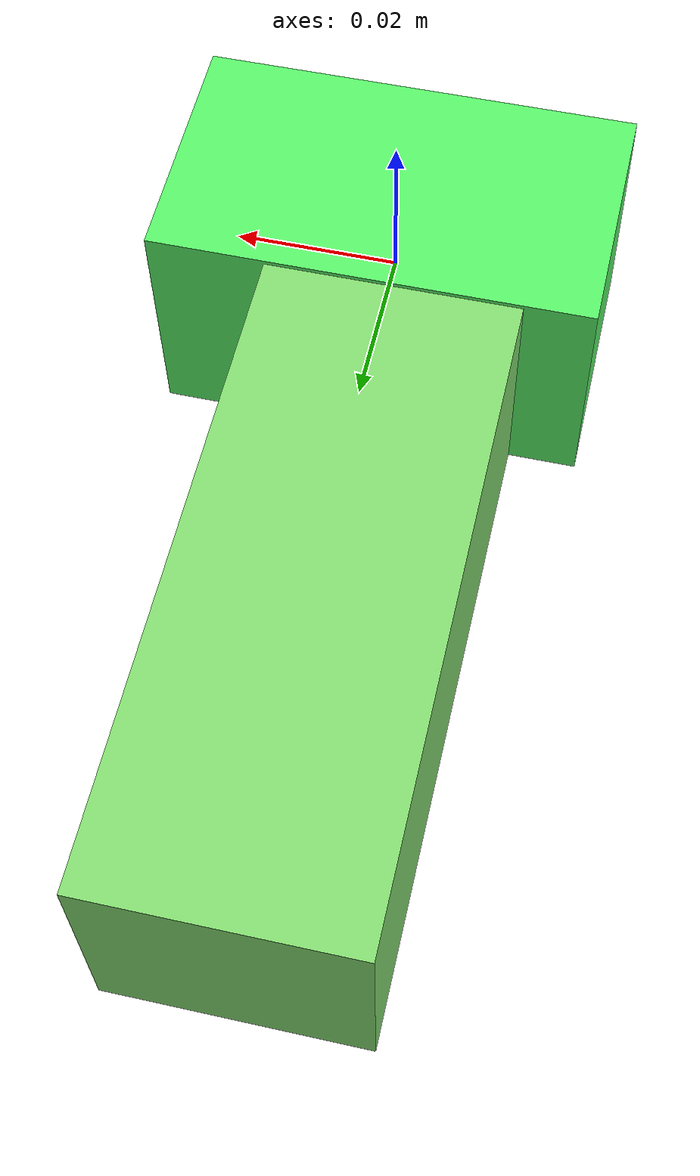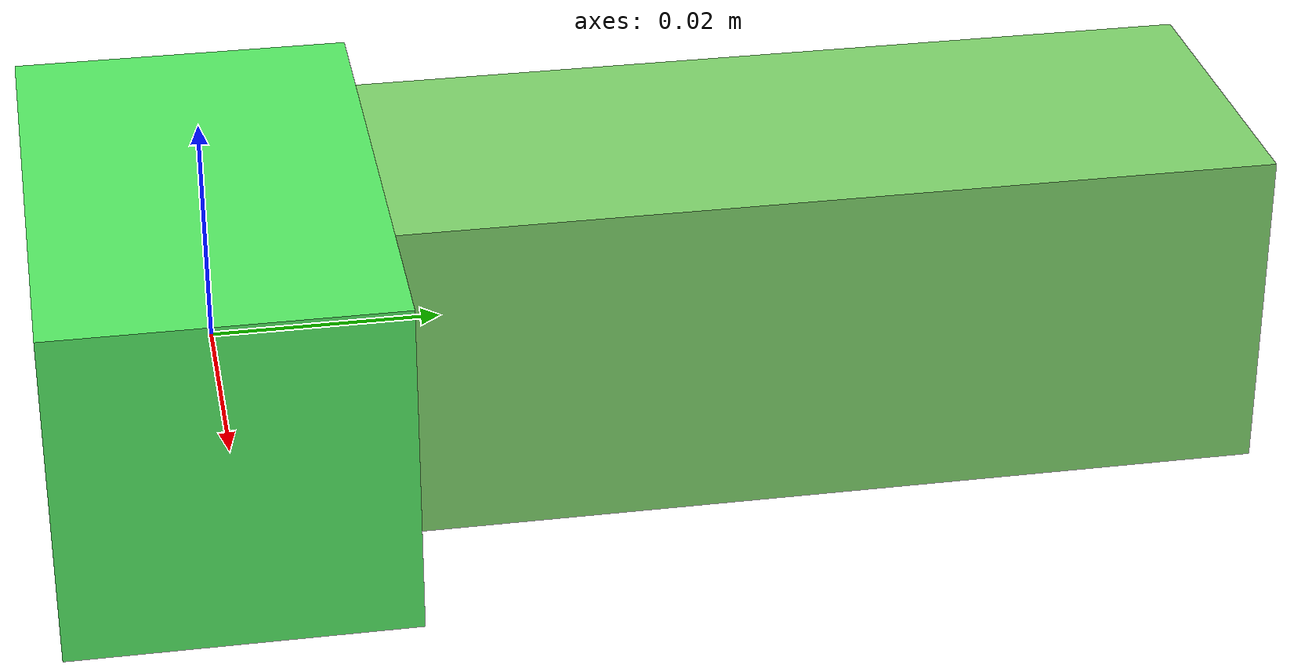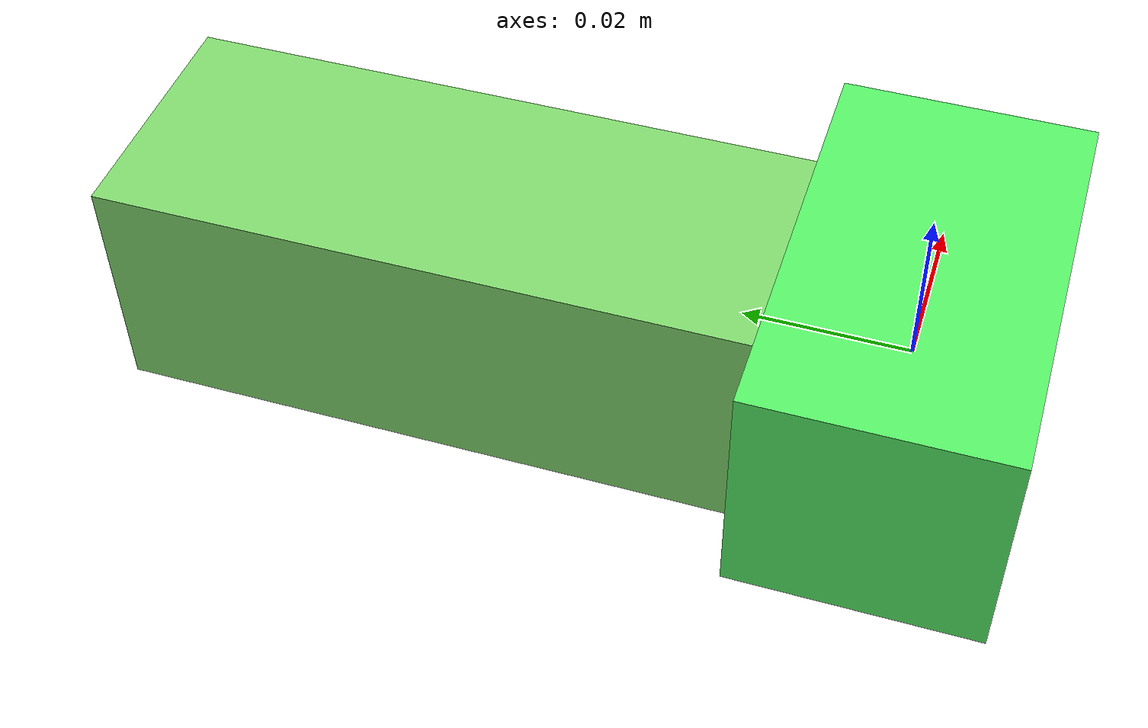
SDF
<sdf version="1.4"><world name="default"><model name="object0"><link name="link1"><pose>0 0 0 0 0 0</pose><inertial><pose>0 0 0 0 0 0</pose><mass>0.02830788097941822</mass><inertia><ixx>4.2461821469127326e-06</ixx><ixy>0</ixy><iyy>8.605752157828047e-06</iyy><ixz>0</ixz><iyz>0</iyz><izz>8.605752157828047e-06</izz></inertia></inertial><visual name="link1_visual"><pose>0 0  0 0 0 0</pose><geometry><box><size>0.05242200181373745 0.03 0.03</size></box></geometry><material><diffuse>0.3460168459527909 0.9553376539969909 0.40887387880783055 1</diffuse></material></visual><collision><pose>0 0  0 0 0 0</pose><geometry><box><size>0.05242200181373745 0.03 0.03</size></box></geometry></collision></link><link name="link2"><pose>-0.002863641713798373 0.043876690948251515 0 0 0 0</pose><inertial><pose>0 0 0 0 0 0</pose><mass>0.051391122683137135</mass><inertia><ixx>4.238949714477528e-05</ixx><ixy>0</ixy><iyy>7.455995382611812e-06</iyy><ixz>0</ixz><iyz>0</iyz><izz>4.2642170164634034e-05</izz></inertia></inertial><visual name="link2_visual"><pose>0 0  0 0 0 0</pose><geometry><box><size>0.03 0.09516874570951321 0.028999999999999998</size></box></geometry><material><diffuse>0.5116294358749088 0.8578519773682962 0.4383276774867228 1</diffuse></material></visual><collision><pose>0 0  0 0 0 0</pose><geometry><box><size>0.03 0.09516874570951321 0.028999999999999998</size></box></geometry></collision></link><joint name="link_joint_0" type="fixed"><parent>link1</parent><child>link2</child><pose>0 0 0 0 0 0</pose><axis><xyz>0 0 1</xyz></axis></joint></model></world></sdf>
